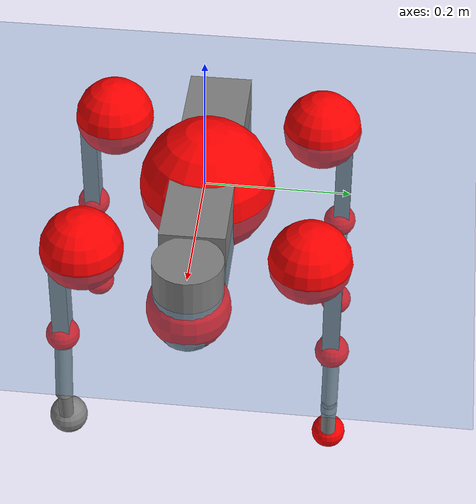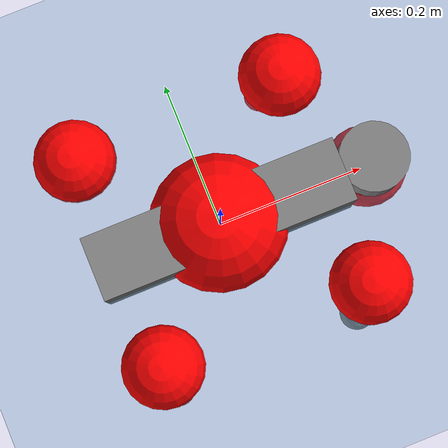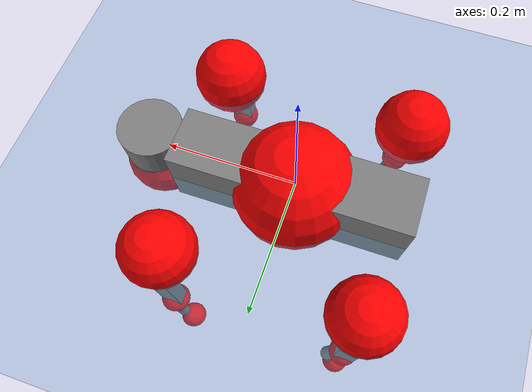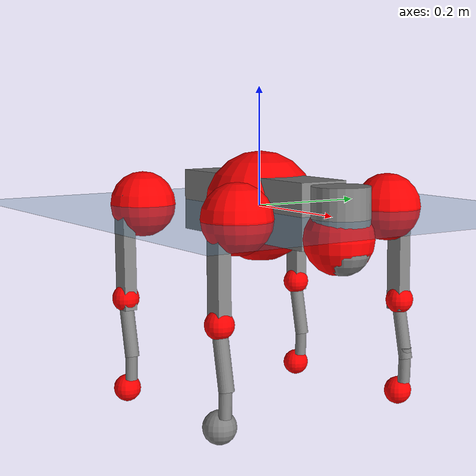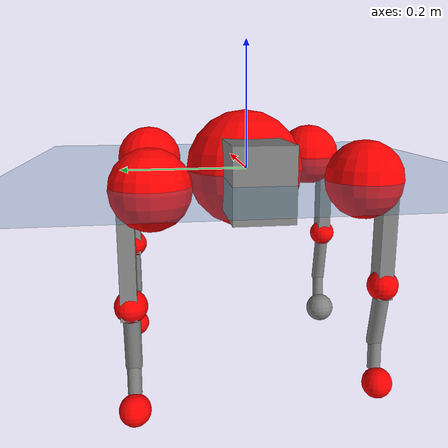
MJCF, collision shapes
<mujoco model="go2">
  <compiler angle="radian" assetdir="assets" balanceinertia="true" inertiafromgeom="false"/>

  <option timestep="0.005" density="1.2" viscosity="2e-05"/>

  <size nkey="1"/>

  <visual>
    <quality shadowsize="8192"/>
    <map shadowclip="0.5"/>
  </visual>

  <default>
    <default class="/">
      <geom contype="0" conaffinity="0" group="1" solref="-1000 -80"/>
      <site size="0.01 0.005 0.005" group="5"/>
      <general forcelimited="true" biastype="affine" gainprm="20" biasprm="0 -20 -0.5"/>
      <default class="go2">
        <joint armature="0.01" damping="0.01" frictionloss="0.2"/>
        <geom condim="1" margin="0.001"/>
        <default class="visual">
          <geom type="mesh" group="2"/>
        </default>
        <default class="collision">
          <geom group="3"/>
          <default class="foot">
            <geom size="0.022 0 0" condim="6" priority="1" friction="0.8 0.02 0.01" solimp="0.015 1 0.022"/>
          </default>
        </default>
        <default class="reward_collision_sphere">
          <geom group="5" rgba="1 0 0 1"/>
        </default>
      </default>
    </default>
  </default>

  <asset>
    <texture type="skybox" colorspace="auto" name="//unnamed_texture_0" builtin="gradient" rgb1="0.95 0.95 0.95" rgb2="0.95 0.95 0.95" width="100" height="600"/>
    <texture type="2d" colorspace="auto" name="texplane" builtin="checker" rgb1="0.345 0.575 0.748" rgb2="0.345 0.575 0.748" markrgb="1 1 1" width="512" height="512"/>
    <material name="MatPlane" class="/" texture="texplane" texuniform="true" texrepeat="2 2" specular="0.9"/>
    <material name="metal" class="/" rgba="0.9 0.95 0.95 1"/>
    <material name="black" class="/" rgba="0 0 0 1"/>
    <material name="white" class="/"/>
    <material name="gray" class="/" rgba="0.671705 0.692426 0.77427 1"/>
    <mesh name="base_0" class="/" file="base_0.obj"/>
    <mesh name="base_1" class="/" file="base_1.obj"/>
    <mesh name="base_2" class="/" file="base_2.obj"/>
    <mesh name="base_3" class="/" file="base_3.obj"/>
    <mesh name="base_4" class="/" file="base_4.obj"/>
    <mesh name="hip_0" class="/" file="hip_0.obj"/>
    <mesh name="hip_1" class="/" file="hip_1.obj"/>
    <mesh name="thigh_0" class="/" file="thigh_0.obj"/>
    <mesh name="thigh_1" class="/" file="thigh_1.obj"/>
    <mesh name="thigh_mirror_0" class="/" file="thigh_mirror_0.obj"/>
    <mesh name="thigh_mirror_1" class="/" file="thigh_mirror_1.obj"/>
    <mesh name="calf_0" class="/" file="calf_0.obj"/>
    <mesh name="calf_1" class="/" file="calf_1.obj"/>
    <mesh name="calf_mirror_0" class="/" file="calf_mirror_0.obj"/>
    <mesh name="calf_mirror_1" class="/" file="calf_mirror_1.obj"/>
    <mesh name="foot" class="/" file="foot.obj"/>
  </asset>

  <worldbody>
    <geom name="floor" class="/" size="100 100 0.125" type="plane" group="0" material="MatPlane"/>
    <light name="toplight_shadow" class="/" pos="0 0 5" dir="0.0990148 0.0990148 -0.990148" type="directional" ambient="0.04 0.04 0.04" diffuse="0.55 0.55 0.55" specular="0.12 0.12 0.12"/>
    <light name="toplight_fill" class="/" pos="0 0 5" dir="0.0990148 0.0990148 -0.990148" type="directional" castshadow="false" ambient="0.04 0.04 0.04" diffuse="0.3 0.3 0.3" specular="0.08 0.08 0.08"/>
    <body name="trunk" childclass="go2" pos="-0.000987224 0.00319469 -0.000670001" quat="0.999999 0.000801817 -0.000278234 0.00138681">
      <inertial pos="0.0179968 0.0079559 -0.00768328" quat="-0.00203824 0.716121 0.00669813 0.697941" mass="5.88594" diaginertia="0.0338871 0.38827 0.00592437"/>
      <joint name="//unnamed_joint_0" type="free" armature="0" damping="0" frictionloss="0"/>
      <geom name="//unnamed_geom_1" class="visual" material="black" mesh="base_0"/>
      <geom name="//unnamed_geom_2" class="visual" material="black" mesh="base_1"/>
      <geom name="//unnamed_geom_3" class="visual" material="black" mesh="base_2"/>
      <geom name="//unnamed_geom_4" class="visual" material="white" mesh="base_3"/>
      <geom name="//unnamed_geom_5" class="visual" material="gray" mesh="base_4"/>
      <geom name="trunk_1" class="collision" size="0.176167 0.0437843 0.053384" type="box"/>
      <geom name="trunk_2" class="collision" size="0.0468281 0.0421453" pos="0.21821 0 0.0074932" type="cylinder"/>
      <geom name="trunk_3" class="collision" size="0.0440184" pos="0.224335 0 -0.0449592"/>
      <geom name="//unnamed_geom_9" class="reward_collision_sphere" size="0.0936562"/>
      <geom name="//unnamed_geom_10" class="reward_collision_sphere" size="0.0561937" pos="0.214381 0 -0.0337194"/>
      <site name="imu" pos="-0.0303594 0.00978986 0.0414568" size="0.00936562"/>
      <camera name="track" pos="0 -2.58943 0" quat="0.707107 0.707107 0 0" mode="trackcom"/>
      <camera name="ego_camera" pos="0.238882 0 0.0337194" quat="-0.5 -0.5 0.5 0.5"/>
      <body name="FL_hip" pos="0.149569 0.0622973 0.00199926" quat="0.999999 0.00072283 0.000193946 -0.000819213">
        <inertial pos="-0.00493462 0.00778038 0.00227755" quat="0.460281 0.522117 0.520361 0.494732" mass="0.578258" diaginertia="0.000231361 0.00223876 0.000113047"/>
        <joint name="FL_hip_joint" pos="0 0 0" axis="0.999935 -0.0113328 -0.00101296" range="-1.01573 1.00877" armature="0.00883684" damping="0.0237767" frictionloss="0.18261"/>
        <geom name="//unnamed_geom_11" class="visual" material="metal" mesh="hip_0"/>
        <geom name="//unnamed_geom_12" class="visual" material="gray" mesh="hip_1"/>
        <geom name="//unnamed_geom_13" class="collision" size="0.0430818 0.0187312" pos="0 0.103577 0" quat="0.707107 0.707107 0 0" type="cylinder"/>
        <geom name="//unnamed_geom_14" class="reward_collision_sphere" size="0.0561937" pos="0 0.0906302 0"/>
        <body name="FL_thigh" pos="-0.00491494 0.122055 0.00131048" quat="0.999991 0.00326144 0.00220394 -0.00145979">
          <inertial pos="-0.00483393 -0.0372953 -0.026421" quat="0.830246 0.0848322 -0.0204171 0.550526" mass="0.933175" diaginertia="0.00169641 0.0193082 0.000209428"/>
          <joint name="FL_thigh_joint" pos="0 0 0" axis="-0.0172698 0.99985 -0.0014749" range="-1.50315 3.62949" armature="0.00568756" damping="0.0216655" frictionloss="0.205519"/>
          <geom name="//unnamed_geom_15" class="visual" material="metal" mesh="thigh_0"/>
          <geom name="//unnamed_geom_16" class="visual" material="gray" mesh="thigh_1"/>
          <geom name="//unnamed_geom_17" class="collision" size="0.0997438 0.0114729 0.0159215" pos="0 0 -0.0798026" quat="0.707107 0 0.707107 0" type="box"/>
          <body name="FL_calf" pos="0.0013316 0.00183732 -0.163128" quat="0.999999 -9.27859e-05 -0.000713829 -0.000728691">
            <inertial pos="0.0109902 0.00187904 -0.101018" quat="0.710792 0.0010573 -0.00515306 0.703383" mass="0.205956" diaginertia="0.000402152 0.00503211 1.26354e-05"/>
            <joint name="FL_calf_joint" pos="0 0 0" axis="0.00359782 0.999992 -0.00158881" range="-2.89193 -0.934307" armature="0.0103216" damping="0.0347757" frictionloss="0.191888"/>
            <geom name="//unnamed_geom_18" class="visual" material="gray" mesh="calf_0"/>
            <geom name="//unnamed_geom_19" class="visual" material="black" mesh="calf_1"/>
            <geom name="FL_calf0" class="collision" size="0.0112387 0.0561937" pos="0.00612518 0 -0.0449592" quat="0.994493 0 -0.104807 0" type="cylinder"/>
            <geom name="//unnamed_geom_21" class="collision" size="0.0103022 0.0304383" pos="0.015313 0 -0.110899" quat="0.999688 0 0.0249974 0" type="cylinder"/>
            <geom name="//unnamed_geom_22" class="visual" pos="0 0 -0.159605" quat="1 0 0 0" material="black" mesh="foot"/>
            <geom name="FL_foot" class="foot" size="0.0214525" pos="-0.0015313 0 -0.159605"/>
            <geom name="//unnamed_geom_24" class="reward_collision_sphere" size="0.023414"/>
            <geom name="//unnamed_geom_25" class="reward_collision_sphere" size="0.023414" pos="-0.0015313 0 -0.159605"/>
            <site name="FL_foot" class="foot" pos="-0.0015313 0 -0.159605" size="0.00936562"/>
          </body>
        </body>
      </body>
      <body name="FR_hip" pos="0.15618 -0.0588332 0.00270192" quat="0.999999 -0.000191262 9.01284e-05 0.00105029">
        <inertial pos="-0.00606655 -0.00252245 -1.2618e-06" quat="0.501584 0.485453 0.491189 0.52104" mass="0.56549" diaginertia="0.000246807 0.00216551 0.000115406"/>
        <joint name="FR_hip_joint" pos="0 0 0" axis="0.999936 0.00213657 -0.0110689" stiffness="0.0453327" range="-1.00529 0.934393" armature="0.00962775" damping="0.0279856" frictionloss="0.196106"/>
        <geom name="//unnamed_geom_26" class="visual" pos="0 4.75127e-09 2.03792e-07" quat="4.63268e-05 1 0 0" material="metal" mesh="hip_0"/>
        <geom name="//unnamed_geom_27" class="visual" pos="0 7.70238e-09 -5.04055e-07" quat="4.63268e-05 1 0 0" material="gray" mesh="hip_1"/>
        <geom name="//unnamed_geom_28" class="collision" size="0.0430818 0.0187312" pos="0 -0.103577 0" quat="0.707107 0.707107 0 0" type="cylinder"/>
        <geom name="//unnamed_geom_29" class="reward_collision_sphere" size="0.0561937" pos="0 -0.0906302 0"/>
        <body name="FR_thigh" pos="0.000116949 -0.123523 0.0075029" quat="1 -6.75868e-05 0.000118694 7.80292e-06">
          <inertial pos="-0.00430527 0.0317888 -0.0314605" quat="0.551436 -0.0191707 0.0850943 0.829645" mass="0.964058" diaginertia="0.00164074 0.0214222 0.000209146"/>
          <joint name="FR_thigh_joint" pos="0 0 0" axis="0.0012453 -0.999986 0.00507869" range="-3.52345 1.57456" armature="0.0120489" damping="0" frictionloss="0.211993"/>
          <geom name="//unnamed_geom_30" class="visual" material="metal" mesh="thigh_mirror_0"/>
          <geom name="//unnamed_geom_31" class="visual" material="gray" mesh="thigh_mirror_1"/>
          <geom name="//unnamed_geom_32" class="collision" size="0.0997438 0.0114729 0.0159215" pos="0 0 -0.0798026" quat="0.707107 0 0.707107 0" type="box"/>
          <body name="FR_calf" pos="0.000750785 -0.000332306 -0.165576" quat="1 2.67167e-05 -0.000840685 -0.000146656">
            <inertial pos="0.00750601 -0.00226267 -0.104963" quat="0.702857 -0.00552304 -0.000432523 0.711309" mass="0.178277" diaginertia="0.000352255 0.00455681 1.16036e-05"/>
            <joint name="FR_calf_joint" pos="0 0 0" axis="0.0133579 -0.999886 -0.00710909" range="0.848109 2.74268" armature="0.00849368" damping="0.0434693" frictionloss="0.186678"/>
            <geom name="//unnamed_geom_33" class="visual" material="gray" mesh="calf_mirror_0"/>
            <geom name="//unnamed_geom_34" class="visual" material="black" mesh="calf_mirror_1"/>
            <geom name="FR_calf0" class="collision" size="0.0121753 0.0561937" pos="0.00765648 0 -0.0449592" quat="0.995004 0 -0.0998334 0" type="cylinder"/>
            <geom name="//unnamed_geom_36" class="collision" size="0.0103022 0.0304383" pos="0.015313 0 -0.110899" quat="0.999688 0 0.0249974 0" type="cylinder"/>
            <geom name="//unnamed_geom_37" class="visual" pos="0 0 -0.159605" quat="1 0 0 0" material="black" mesh="foot"/>
            <geom name="FR_foot" class="foot" size="0.0268861" pos="-0.0015313 0 -0.159605"/>
            <geom name="//unnamed_geom_39" class="reward_collision_sphere" size="0.023414"/>
            <geom name="//unnamed_geom_40" class="reward_collision_sphere" size="0.023414" pos="-0.0015313 0 -0.159605"/>
            <site name="FR_foot" class="foot" pos="-0.0015313 0 -0.159605" size="0.00936562"/>
          </body>
        </body>
      </body>
      <body name="RL_hip" pos="-0.147375 0.0586289 -0.00535425" quat="0.999999 -0.000827999 -0.000659659 0.000273057">
        <inertial pos="0.00571288 0.00106605 -0.00269593" quat="0.506837 0.503414 0.49339 0.496243" mass="0.617988" diaginertia="0.000228021 0.00220803 0.000110702"/>
        <joint name="RL_hip_joint" pos="0 0 0" axis="-0.999997 0.00102482 -0.00243469" range="-1.15953 1.04289" armature="0.00866836" damping="0.00498774" frictionloss="0.145629"/>
        <geom name="//unnamed_geom_41" class="visual" pos="-1.4224e-10 0 -2.78823e-08" quat="4.63268e-05 0 1 0" material="metal" mesh="hip_0"/>
        <geom name="//unnamed_geom_42" class="visual" pos="-2.30588e-10 0 -2.47276e-08" quat="4.63268e-05 0 1 0" material="gray" mesh="hip_1"/>
        <geom name="//unnamed_geom_43" class="collision" size="0.0430818 0.0187312" pos="0 0.103577 0" quat="0.707107 0.707107 0 0" type="cylinder"/>
        <geom name="//unnamed_geom_44" class="reward_collision_sphere" size="0.0561937" pos="0 0.0906302 0"/>
        <body name="RL_thigh" pos="0.00055259 0.124394 0.000431682" quat="0.999994 0.0028717 -0.00155312 0.00123756">
          <inertial pos="-0.00242056 -0.0379997 -0.0243449" quat="0.831397 0.0973467 -0.0369082 0.545839" mass="1.04729" diaginertia="0.00161402 0.0208669 0.000193092"/>
          <joint name="RL_thigh_joint" pos="0 0 0" axis="0.0419182 0.999106 -0.00545513" range="-0.56861 4.50103" armature="0.00794604" damping="0" frictionloss="0.205847"/>
          <geom name="//unnamed_geom_45" class="visual" material="metal" mesh="thigh_0"/>
          <geom name="//unnamed_geom_46" class="visual" material="gray" mesh="thigh_1"/>
          <geom name="//unnamed_geom_47" class="collision" size="0.0997438 0.0114729 0.0159215" pos="0 0 -0.0798026" quat="0.707107 0 0.707107 0" type="box"/>
          <body name="RL_calf" pos="0.00158792 -0.00239516 -0.163821" quat="1 0.000530732 0.000247222 0.000577841">
            <inertial pos="0.00609685 -0.00607707 -0.108111" quat="0.709803 0.0102829 0.000517808 0.704325" mass="0.201287" diaginertia="0.00042058 0.00572725 1.35949e-05"/>
            <joint name="RL_calf_joint" pos="0 0 0" axis="0.00313053 0.999993 -0.00211364" range="-2.88311 -0.827719" armature="0.00544879" damping="0" frictionloss="0.214318"/>
            <geom name="//unnamed_geom_48" class="visual" material="gray" mesh="calf_0"/>
            <geom name="//unnamed_geom_49" class="visual" material="black" mesh="calf_1"/>
            <geom name="RL_calf0" class="collision" size="0.0121753 0.0561937" pos="0.00765648 0 -0.0449592" quat="0.995004 0 -0.0998334 0" type="cylinder"/>
            <geom name="//unnamed_geom_51" class="collision" size="0.0103022 0.0304383" pos="0.015313 0 -0.110899" quat="0.999688 0 0.0249974 0" type="cylinder"/>
            <geom name="//unnamed_geom_52" class="visual" pos="0 0 -0.159605" quat="1 0 0 0" material="black" mesh="foot"/>
            <geom name="RL_foot" class="foot" size="0.0233024" pos="-0.0015313 0 -0.159605"/>
            <geom name="//unnamed_geom_54" class="reward_collision_sphere" size="0.023414"/>
            <geom name="//unnamed_geom_55" class="reward_collision_sphere" size="0.023414" pos="-0.0015313 0 -0.159605"/>
            <site name="RL_foot" class="foot" pos="-0.0015313 0 -0.159605" size="0.00936562"/>
          </body>
        </body>
      </body>
      <body name="RR_hip" pos="-0.14022 -0.0591854 0.000890984" quat="0.99999 0.00230493 -0.000804715 0.00374806">
        <inertial pos="0.00600107 -0.00316376 -0.00179457" quat="0.501826 0.496614 0.496248 0.505256" mass="0.571165" diaginertia="0.000236075 0.00222364 0.00010224"/>
        <joint name="RR_hip_joint" pos="0 0 0" axis="-0.999964 0.00851319 0.000431945" range="-1.0806 0.980676" armature="0.00621223" damping="0.00680903" frictionloss="0.163428"/>
        <geom name="//unnamed_geom_56" class="visual" pos="1.60557e-10 4.75127e-09 -2.31674e-07" quat="2.14617e-09 4.63268e-05 4.63268e-05 -1" material="metal" mesh="hip_0"/>
        <geom name="//unnamed_geom_57" class="visual" pos="1.85283e-10 7.70238e-09 4.79327e-07" quat="2.14617e-09 4.63268e-05 4.63268e-05 -1" material="gray" mesh="hip_1"/>
        <geom name="//unnamed_geom_58" class="collision" size="0.0430818 0.0187312" pos="0 -0.103577 0" quat="0.707107 0.707107 0 0" type="cylinder"/>
        <geom name="//unnamed_geom_59" class="reward_collision_sphere" size="0.0561937" pos="0 -0.0906302 0"/>
        <body name="RR_thigh" pos="0.00332585 -0.128444 -0.000441294" quat="1 7.28121e-05 -6.4794e-05 -0.000137825">
          <inertial pos="-0.00354102 0.0331394 -0.0260046" quat="0.553495 -0.0278895 0.0905123 0.82745" mass="0.972801" diaginertia="0.00155093 0.0214054 0.000219404"/>
          <joint name="RR_thigh_joint" pos="0 0 0" axis="0.0066934 -0.999962 0.00564355" range="-4.50087 0.35258" armature="0.013062" damping="0" frictionloss="0.167947"/>
          <geom name="//unnamed_geom_60" class="visual" material="metal" mesh="thigh_mirror_0"/>
          <geom name="//unnamed_geom_61" class="visual" material="gray" mesh="thigh_mirror_1"/>
          <geom name="//unnamed_geom_62" class="collision" size="0.0997438 0.0114729 0.0159215" pos="0 0 -0.0798026" quat="0.707107 0 0.707107 0" type="box"/>
          <body name="RR_calf" pos="-0.00247269 -0.000378515 -0.160214" quat="0.999999 -0.000952243 0.000611156 0.000544186">
            <inertial pos="0.00684956 0.00300565 -0.104949" quat="0.703703 -0.005768 0.00473329 0.710455" mass="0.188791" diaginertia="0.000393195 0.00519964 1.21133e-05"/>
            <joint name="RR_calf_joint" pos="0 0 0" axis="0.0209426 -0.999735 0.00954416" stiffness="0.00309568" range="0.714331 2.69908" armature="0.00876556" damping="0.000585536" frictionloss="0.169811"/>
            <geom name="//unnamed_geom_63" class="visual" material="gray" mesh="calf_mirror_0"/>
            <geom name="//unnamed_geom_64" class="visual" material="black" mesh="calf_mirror_1"/>
            <geom name="RR_calf0" class="collision" size="0.0121753 0.0561937" pos="0.00765648 0 -0.0449592" quat="0.995004 0 -0.0998334 0" type="cylinder"/>
            <geom name="//unnamed_geom_66" class="collision" size="0.0103022 0.0304383" pos="0.015313 0 -0.110899" quat="0.999688 0 0.0249974 0" type="cylinder"/>
            <geom name="//unnamed_geom_67" class="visual" pos="0 0 -0.159605" quat="1 0 0 0" material="black" mesh="foot"/>
            <geom name="RR_foot" class="foot" size="0.0136873" pos="-0.0015313 0 -0.159605"/>
            <geom name="//unnamed_geom_69" class="reward_collision_sphere" size="0.023414"/>
            <geom name="//unnamed_geom_70" class="reward_collision_sphere" size="0.023414" pos="-0.0015313 0 -0.159605"/>
            <site name="RR_foot" class="foot" pos="-0.0015313 0 -0.159605" size="0.00936562"/>
          </body>
        </body>
      </body>
    </body>
  </worldbody>

  <contact>
    <pair class="/" geom1="floor" geom2="FL_foot" name="//unnamed_contact_0"/>
    <pair class="/" geom1="floor" geom2="FR_foot" name="//unnamed_contact_1"/>
    <pair class="/" geom1="floor" geom2="RL_foot" name="//unnamed_contact_2"/>
    <pair class="/" geom1="floor" geom2="RR_foot" name="//unnamed_contact_3"/>
  </contact>

  <actuator>
    <general name="FL_hip" class="/" joint="FL_hip_joint" forcerange="-21.3423 21.3423" gainprm="18.4428" biasprm="0 -18.4428 -0.489506"/>
    <general name="FL_thigh" class="/" joint="FL_thigh_joint" forcerange="-22.4305 22.4305" gainprm="18.4428" biasprm="0 -18.4428 -0.489506"/>
    <general name="FL_calf" class="/" joint="FL_calf_joint" forcerange="-45.341 45.341" gainprm="18.4428" biasprm="0 -18.4428 -0.489506"/>
    <general name="FR_hip" class="/" joint="FR_hip_joint" forcerange="-23.3727 23.3727" gainprm="18.4428" biasprm="0 -18.4428 -0.489506"/>
    <general name="FR_thigh" class="/" joint="FR_thigh_joint" forcerange="-20.7131 20.7131" gainprm="18.4428" biasprm="0 -18.4428 -0.489506"/>
    <general name="FR_calf" class="/" joint="FR_calf_joint" forcerange="-48.864 48.864" gainprm="18.4428" biasprm="0 -18.4428 -0.489506"/>
    <general name="RL_hip" class="/" joint="RL_hip_joint" forcerange="-21.8527 21.8527" gainprm="18.4428" biasprm="0 -18.4428 -0.489506"/>
    <general name="RL_thigh" class="/" joint="RL_thigh_joint" forcerange="-21.1673 21.1673" gainprm="18.4428" biasprm="0 -18.4428 -0.489506"/>
    <general name="RL_calf" class="/" joint="RL_calf_joint" forcerange="-44.4622 44.4622" gainprm="18.4428" biasprm="0 -18.4428 -0.489506"/>
    <general name="RR_hip" class="/" joint="RR_hip_joint" forcerange="-23.1945 23.1945" gainprm="18.4428" biasprm="0 -18.4428 -0.489506"/>
    <general name="RR_thigh" class="/" joint="RR_thigh_joint" forcerange="-22.1737 22.1737" gainprm="18.4428" biasprm="0 -18.4428 -0.489506"/>
    <general name="RR_calf" class="/" joint="RR_calf_joint" forcerange="-32.1669 32.1669" gainprm="18.4428" biasprm="0 -18.4428 -0.489506"/>
  </actuator>

  <sensor>
    <gyro site="imu" name="imu_angular_velocity"/>
    <velocimeter site="imu" name="imu_linear_velocity"/>
    <framelinvel objtype="site" objname="FL_foot" name="FL_foot_global_linear_velocity"/>
    <framelinvel objtype="site" objname="FR_foot" name="FR_foot_global_linear_velocity"/>
    <framelinvel objtype="site" objname="RL_foot" name="RL_foot_global_linear_velocity"/>
    <framelinvel objtype="site" objname="RR_foot" name="RR_foot_global_linear_velocity"/>
  </sensor>

  <keyframe>
    <key name="home" qpos="0 0 0.325 1 0 0 0 0.1 0.8 -1.5 -0.1 -0.8 1.5 -0.1 0.8 -1.5 0.1 -0.8 1.5"/>
  </keyframe>
</mujoco>
